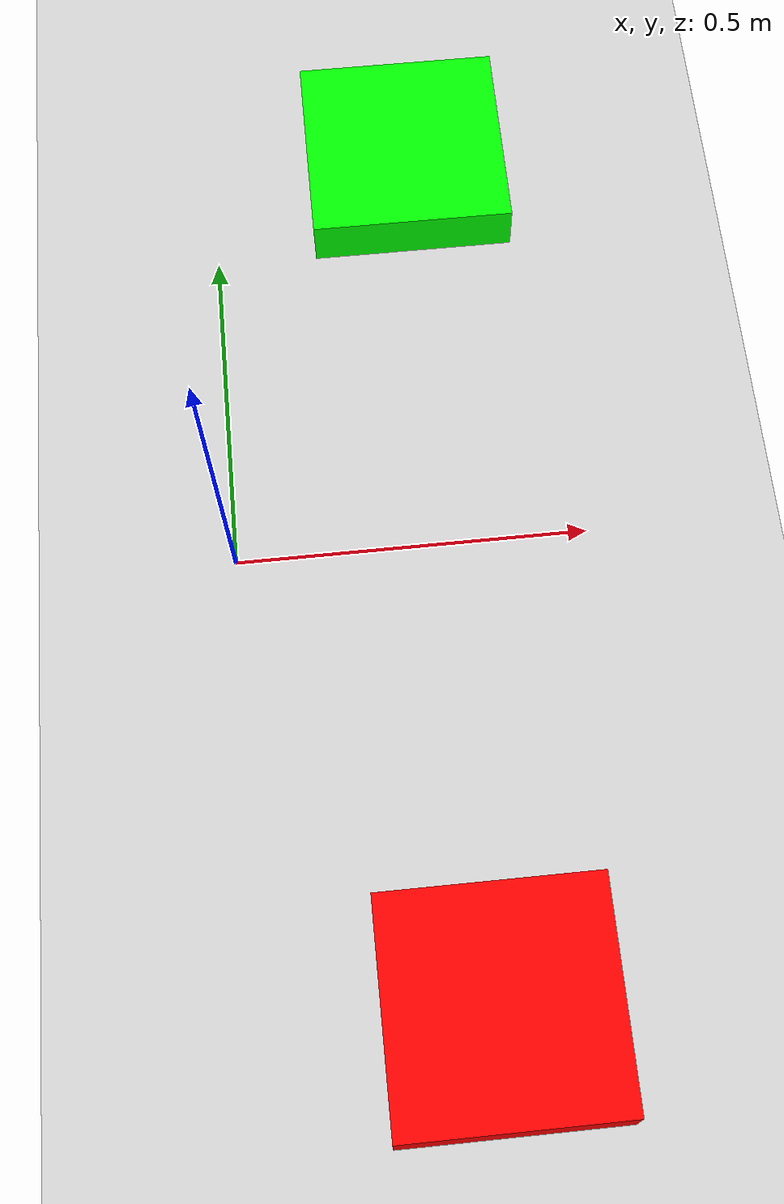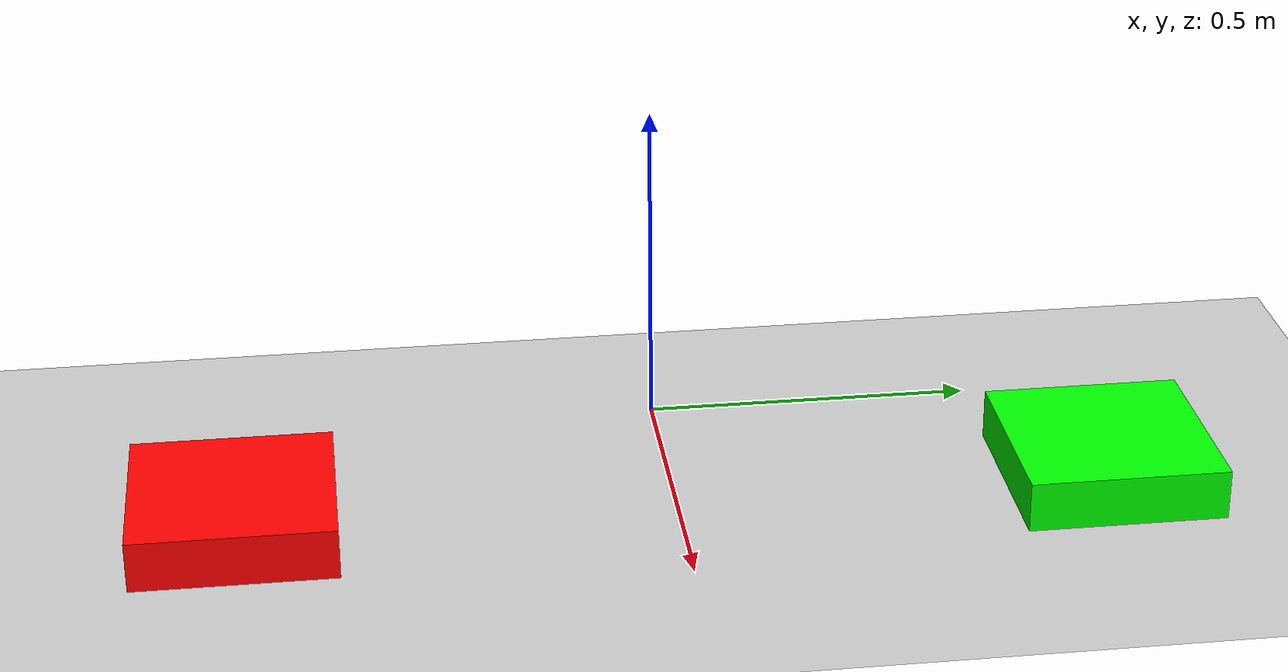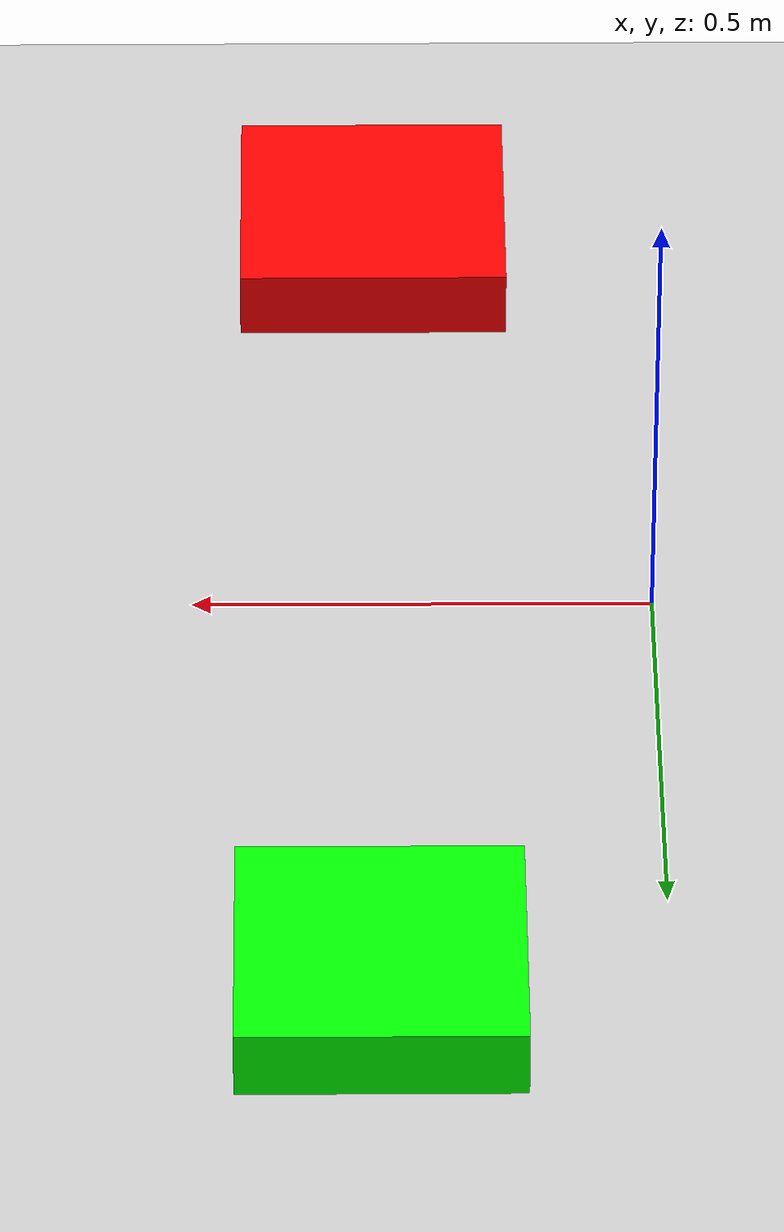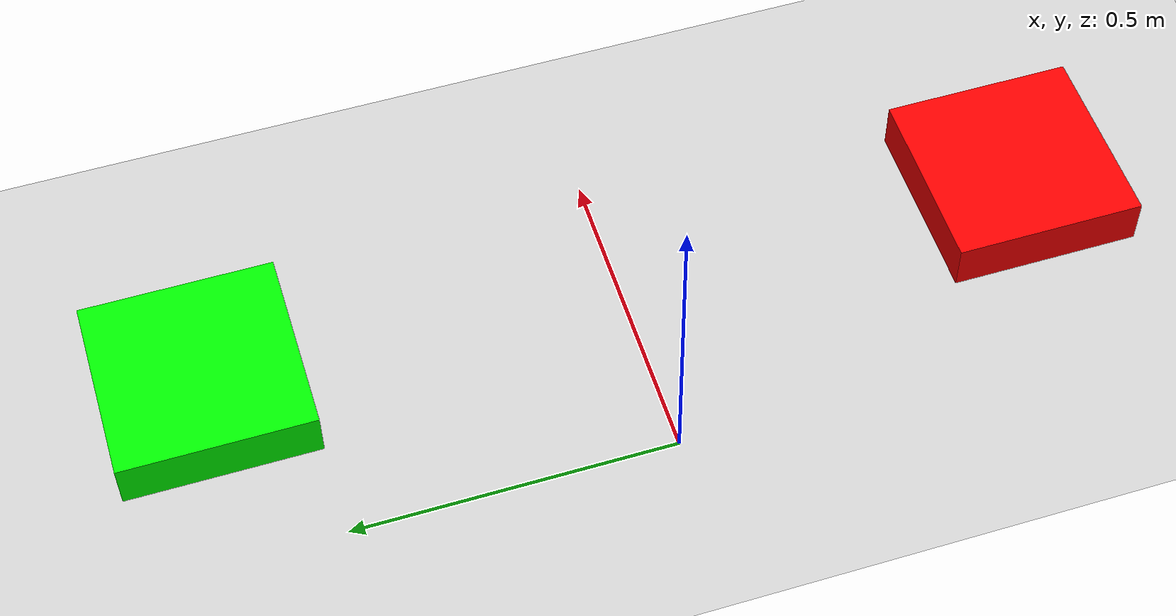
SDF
<?xml version="1.0" ?>
<sdf version="1.8">
  <world name="inspectra_world">
    <physics name="1ms" type="ignored">
      <max_step_size>0.001</max_step_size>
      <real_time_factor>1.0</real_time_factor>
    </physics>
    <plugin filename="libignition-gazebo-physics-system.so" name="ignition::gazebo::systems::Physics"/>
    <plugin filename="libignition-gazebo-user-commands-system.so" name="ignition::gazebo::systems::UserCommands"/>
    <plugin filename="libignition-gazebo-scene-broadcaster-system.so" name="ignition::gazebo::systems::SceneBroadcaster"/>

    <light name="sun" type="directional">
      <pose>0 0 10 0 0 0</pose>
      <cast_shadows>true</cast_shadows>
      <diffuse>1 1 1 1</diffuse>
      <specular>0.5 0.5 0.5 1</specular>
    </light>

    <model name="ground_plane">
      <static>true</static>
      <link name="link">
        <collision name="collision">
          <geometry>
            <plane>
              <normal>0 0 1</normal>
              <size>100 100</size>
            </plane>
          </geometry>
        </collision>
        <visual name="visual">
          <geometry>
            <plane>
              <normal>0 0 1</normal>
              <size>100 100</size>
            </plane>
          </geometry>
          <material>
            <ambient>0.8 0.8 0.8 1</ambient>
            <diffuse>0.8 0.8 0.8 1</diffuse>
          </material>
        </visual>
      </link>
    </model>

    <!-- Pass Bin Model -->
    <model name="pass_bin">
      <static>true</static>
      <pose>0.3 0.65 0.0 0 0 0</pose>
      <link name="link">
        <collision name="collision">
          <geometry><box><size>0.3 0.3 0.15</size></box></geometry>
        </collision>
        <visual name="visual">
          <geometry><box><size>0.3 0.3 0.15</size></box></geometry>
          <material><ambient>0 1 0 1</ambient><diffuse>0 1 0 1</diffuse></material>
        </visual>
      </link>
    </model>

    <!-- Fail Bin Model -->
    <model name="fail_bin">
      <static>true</static>
      <pose>0.3 -0.65 0.0 0 0 0</pose>
      <link name="link">
        <collision name="collision">
          <geometry><box><size>0.3 0.3 0.15</size></box></geometry>
        </collision>
        <visual name="visual">
          <geometry><box><size>0.3 0.3 0.15</size></box></geometry>
          <material><ambient>1 0 0 1</ambient><diffuse>1 0 0 1</diffuse></material>
        </visual>
      </link>
    </model>

  </world>
</sdf>
